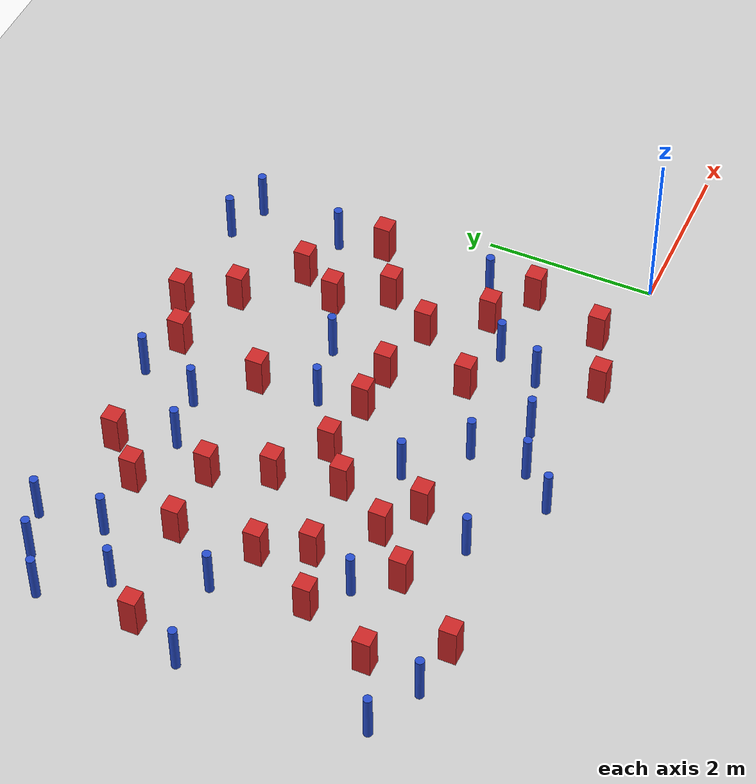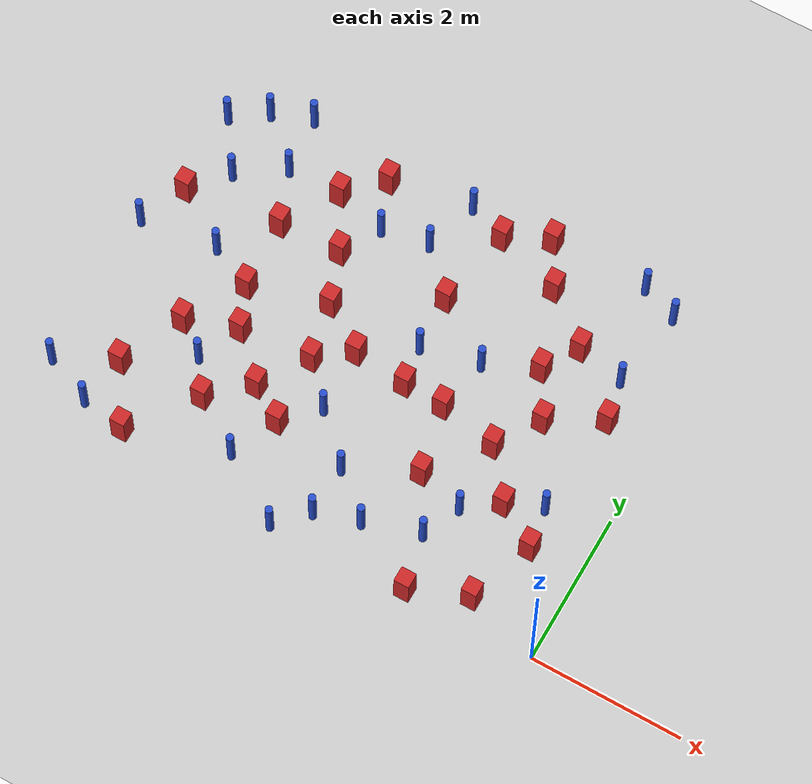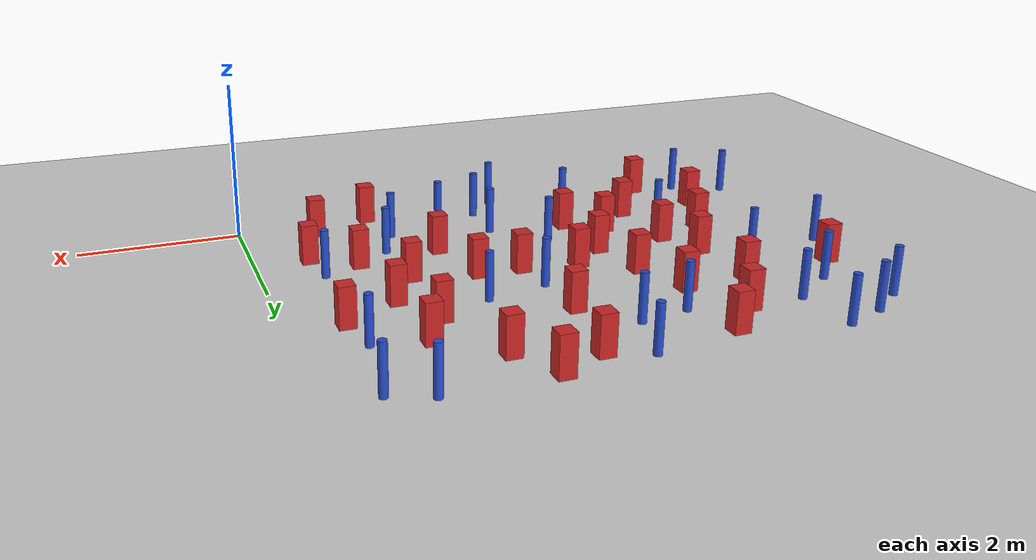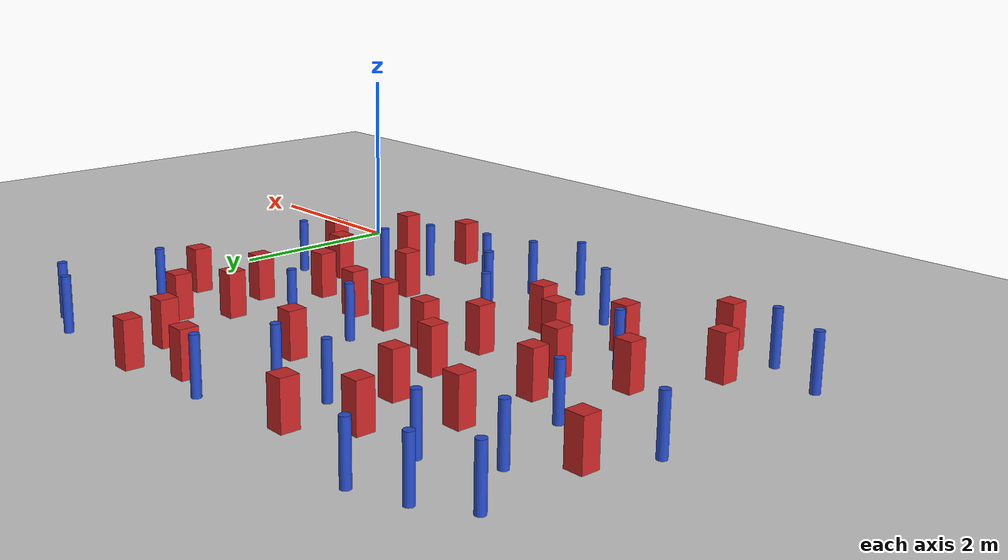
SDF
<sdf version="1.6">
 <world name="default">
  <model name="ground_plane">
   <static>1</static>
   <link name="link">
    <collision name="collision">
     <geometry><plane><normal>0 0 1</normal><size>100 100</size></plane></geometry>
     <surface><friction><ode><mu>100</mu><mu2>50</mu2></ode></friction></surface>
    </collision>
    <visual name="visual">
     <cast_shadows>0</cast_shadows>
     <geometry><plane><normal>0 0 1</normal><size>100 100</size></plane></geometry>
     <material>
      <ambient>1.0 1.0 1.0 1.0</ambient>
      <diffuse>0.8 0.8 0.8 1.0</diffuse>
      <specular>0.01 0.01 0.01 1.000000</specular>
     </material>
    </visual>
   </link>
  </model>
  <model name="square_post_obstacle3">
   <static>true</static>
   <pose>-5.41034767006 3.40983076827 8.22691968438e-08 7.2212513382e-06 -7.54495500217e-07 2.29674213826e-05</pose>
   <link name="link">
    <pose>0 0 0.25 0 -0 0</pose>
    <inertial>
     <mass>100</mass>
     <inertia>
      <ixx>0.166667</ixx>
      <ixy>0</ixy>
      <ixz>0</ixz>
      <iyy>0.166667</iyy>
      <iyz>0</iyz>
      <izz>0.166667</izz>
     </inertia>
    </inertial>
    <collision name="collision"><geometry><box><size>.2 .2 .5</size></box></geometry></collision>
    <visual name="visual">
     <geometry><box><size>.2 .2 .5</size></box></geometry>
     <material>
      <script><name>Gazebo/Red</name><uri>file://media/materials/scripts/gazebo.material</uri></script>
     </material>
    </visual>
   </link>
  </model>
  <model name="pole_obstacle8">
   <static>true</static>
   <pose>-6.29015280869 4.68801422274 2.88873142074e-08 -9.90536690842e-09 4.60219948965e-07 -1.20965994976e-07</pose>
   <link name="link">
    <pose>0 0 0.3 0 -0 0</pose>
    <inertial>
     <mass>1</mass>
     <inertia><ixx>0.145833</ixx><ixy>0</ixy><ixz>0</ixz><iyy>0.145833</iyy><iyz>0</iyz><izz>0.125</izz></inertia>
    </inertial>
    <collision name="collision">
     <geometry><cylinder><radius>0.05</radius><length>.6</length></cylinder></geometry>
    </collision>
    <visual name="visual">
     <geometry><cylinder><radius>0.05</radius><length>.6</length></cylinder></geometry>
     <material>
      <script><name>Gazebo/Blue</name><uri>file://media/materials/scripts/gazebo.material</uri></script>
     </material>
    </visual>
   </link>
  </model>
  <model name="square_post_obstacle8">
   <static>true</static>
   <pose>-2.93860940635 4.60545427997 8.22691968438e-08 7.2212513382e-06 -7.54495500217e-07 2.29674213826e-05</pose>
   <link name="link">
    <pose>0 0 0.25 0 -0 0</pose>
    <inertial>
     <mass>100</mass>
     <inertia>
      <ixx>0.166667</ixx>
      <ixy>0</ixy>
      <ixz>0</ixz>
      <iyy>0.166667</iyy>
      <iyz>0</iyz>
      <izz>0.166667</izz>
     </inertia>
    </inertial>
    <collision name="collision"><geometry><box><size>.2 .2 .5</size></box></geometry></collision>
    <visual name="visual">
     <geometry><box><size>.2 .2 .5</size></box></geometry>
     <material>
      <script><name>Gazebo/Red</name><uri>file://media/materials/scripts/gazebo.material</uri></script>
     </material>
    </visual>
   </link>
  </model>
  <model name="square_post_obstacle12">
   <static>true</static>
   <pose>-1.66555884848 3.28277384429 8.22691968438e-08 7.2212513382e-06 -7.54495500217e-07 2.29674213826e-05</pose>
   <link name="link">
    <pose>0 0 0.25 0 -0 0</pose>
    <inertial>
     <mass>100</mass>
     <inertia>
      <ixx>0.166667</ixx>
      <ixy>0</ixy>
      <ixz>0</ixz>
      <iyy>0.166667</iyy>
      <iyz>0</iyz>
      <izz>0.166667</izz>
     </inertia>
    </inertial>
    <collision name="collision"><geometry><box><size>.2 .2 .5</size></box></geometry></collision>
    <visual name="visual">
     <geometry><box><size>.2 .2 .5</size></box></geometry>
     <material>
      <script><name>Gazebo/Red</name><uri>file://media/materials/scripts/gazebo.material</uri></script>
     </material>
    </visual>
   </link>
  </model>
  <model name="pole_obstacle17">
   <static>true</static>
   <pose>-1.07389106534 4.87921992186 2.88873142074e-08 -9.90536689852e-09 4.60219948989e-07 -1.2096599496e-07</pose>
   <link name="link">
    <pose>0 0 0.3 0 -0 0</pose>
    <inertial>
     <mass>1</mass>
     <inertia><ixx>0.145833</ixx><ixy>0</ixy><ixz>0</ixz><iyy>0.145833</iyy><iyz>0</iyz><izz>0.125</izz></inertia>
    </inertial>
    <collision name="collision">
     <geometry><cylinder><radius>0.05</radius><length>.6</length></cylinder></geometry>
    </collision>
    <visual name="visual">
     <geometry><cylinder><radius>0.05</radius><length>.6</length></cylinder></geometry>
     <material>
      <script><name>Gazebo/Blue</name><uri>file://media/materials/scripts/gazebo.material</uri></script>
     </material>
    </visual>
   </link>
  </model>
  <model name="square_post_obstacle13">
   <static>true</static>
   <pose>-1.32582341424 2.69596367916 8.22691968438e-08 7.2212513382e-06 -7.54495500217e-07 2.29674213826e-05</pose>
   <link name="link">
    <pose>0 0 0.25 0 -0 0</pose>
    <inertial>
     <mass>100</mass>
     <inertia>
      <ixx>0.166667</ixx>
      <ixy>0</ixy>
      <ixz>0</ixz>
      <iyy>0.166667</iyy>
      <iyz>0</iyz>
      <izz>0.166667</izz>
     </inertia>
    </inertial>
    <collision name="collision"><geometry><box><size>.2 .2 .5</size></box></geometry></collision>
    <visual name="visual">
     <geometry><box><size>.2 .2 .5</size></box></geometry>
     <material>
      <script><name>Gazebo/Red</name><uri>file://media/materials/scripts/gazebo.material</uri></script>
     </material>
    </visual>
   </link>
  </model>
  <model name="square_post_obstacle17">
   <static>true</static>
   <pose>-0.67113737275 1.17342062312 8.22691968438e-08 7.2212513382e-06 -7.54495500217e-07 2.29674213826e-05</pose>
   <link name="link">
    <pose>0 0 0.25 0 -0 0</pose>
    <inertial>
     <mass>100</mass>
     <inertia>
      <ixx>0.166667</ixx>
      <ixy>0</ixy>
      <ixz>0</ixz>
      <iyy>0.166667</iyy>
      <iyz>0</iyz>
      <izz>0.166667</izz>
     </inertia>
    </inertial>
    <collision name="collision"><geometry><box><size>.2 .2 .5</size></box></geometry></collision>
    <visual name="visual">
     <geometry><box><size>.2 .2 .5</size></box></geometry>
     <material>
      <script><name>Gazebo/Red</name><uri>file://media/materials/scripts/gazebo.material</uri></script>
     </material>
    </visual>
   </link>
  </model>
  <model name="pole_obstacle25">
   <static>true</static>
   <pose>-6.28411898193 0.190046627765 2.88873142074e-08 -9.90536689378e-09 4.60219949e-07 -1.20965994955e-07</pose>
   <link name="link">
    <pose>0 0 0.3 0 -0 0</pose>
    <inertial>
     <mass>1</mass>
     <inertia><ixx>0.145833</ixx><ixy>0</ixy><ixz>0</ixz><iyy>0.145833</iyy><iyz>0</iyz><izz>0.125</izz></inertia>
    </inertial>
    <collision name="collision">
     <geometry><cylinder><radius>0.05</radius><length>.6</length></cylinder></geometry>
    </collision>
    <visual name="visual">
     <geometry><cylinder><radius>0.05</radius><length>.6</length></cylinder></geometry>
     <material>
      <script><name>Gazebo/Blue</name><uri>file://media/materials/scripts/gazebo.material</uri></script>
     </material>
    </visual>
   </link>
  </model>
  <model name="pole_obstacle27">
   <static>true</static>
   <pose>-2.57740059116 0.464746625475 2.88873142074e-08 -9.90536689151e-09 4.60219949006e-07 -1.20965994951e-07</pose>
   <link name="link">
    <pose>0 0 0.3 0 -0 0</pose>
    <inertial>
     <mass>1</mass>
     <inertia><ixx>0.145833</ixx><ixy>0</ixy><ixz>0</ixz><iyy>0.145833</iyy><iyz>0</iyz><izz>0.125</izz></inertia>
    </inertial>
    <collision name="collision">
     <geometry><cylinder><radius>0.05</radius><length>.6</length></cylinder></geometry>
    </collision>
    <visual name="visual">
     <geometry><cylinder><radius>0.05</radius><length>.6</length></cylinder></geometry>
     <material>
      <script><name>Gazebo/Blue</name><uri>file://media/materials/scripts/gazebo.material</uri></script>
     </material>
    </visual>
   </link>
  </model>
  <model name="pole_obstacle28">
   <static>true</static>
   <pose>-2.33012726247 2.97920122646 2.88873142074e-08 -9.90536690232e-09 4.6021994898e-07 -1.20965994968e-07</pose>
   <link name="link">
    <pose>0 0 0.3 0 -0 0</pose>
    <inertial>
     <mass>1</mass>
     <inertia><ixx>0.145833</ixx><ixy>0</ixy><ixz>0</ixz><iyy>0.145833</iyy><iyz>0</iyz><izz>0.125</izz></inertia>
    </inertial>
    <collision name="collision">
     <geometry><cylinder><radius>0.05</radius><length>.6</length></cylinder></geometry>
    </collision>
    <visual name="visual">
     <geometry><cylinder><radius>0.05</radius><length>.6</length></cylinder></geometry>
     <material>
      <script><name>Gazebo/Blue</name><uri>file://media/materials/scripts/gazebo.material</uri></script>
     </material>
    </visual>
   </link>
  </model>
  <model name="square_post_obstacle19">
   <static>true</static>
   <pose>-0.964790340495 0.286050600379 8.22691968438e-08 7.2212513382e-06 -7.54495500217e-07 2.29674213826e-05</pose>
   <link name="link">
    <pose>0 0 0.25 0 -0 0</pose>
    <inertial>
     <mass>100</mass>
     <inertia>
      <ixx>0.166667</ixx>
      <ixy>0</ixy>
      <ixz>0</ixz>
      <iyy>0.166667</iyy>
      <iyz>0</iyz>
      <izz>0.166667</izz>
     </inertia>
    </inertial>
    <collision name="collision"><geometry><box><size>.2 .2 .5</size></box></geometry></collision>
    <visual name="visual">
     <geometry><box><size>.2 .2 .5</size></box></geometry>
     <material>
      <script><name>Gazebo/Red</name><uri>file://media/materials/scripts/gazebo.material</uri></script>
     </material>
    </visual>
   </link>
  </model>
  <model name="pole_obstacle33">
   <static>true</static>
   <pose>-3.51331519799 -0.095749818379 2.88873142074e-08 -9.90536689633e-09 4.60219948994e-07 -1.20965994959e-07</pose>
   <link name="link">
    <pose>0 0 0.3 0 -0 0</pose>
    <inertial>
     <mass>1</mass>
     <inertia><ixx>0.145833</ixx><ixy>0</ixy><ixz>0</ixz><iyy>0.145833</iyy><iyz>0</iyz><izz>0.125</izz></inertia>
    </inertial>
    <collision name="collision">
     <geometry><cylinder><radius>0.05</radius><length>.6</length></cylinder></geometry>
    </collision>
    <visual name="visual">
     <geometry><cylinder><radius>0.05</radius><length>.6</length></cylinder></geometry>
     <material>
      <script><name>Gazebo/Blue</name><uri>file://media/materials/scripts/gazebo.material</uri></script>
     </material>
    </visual>
   </link>
  </model>
  <model name="pole_obstacle47">
   <static>true</static>
   <pose>-5.92987150498 2.74907113179 2.88873142074e-08 -9.90536690245e-09 4.6021994898e-07 -1.20965994966e-07</pose>
   <link name="link">
    <pose>0 0 0.3 0 -0 0</pose>
    <inertial>
     <mass>1</mass>
     <inertia><ixx>0.145833</ixx><ixy>0</ixy><ixz>0</ixz><iyy>0.145833</iyy><iyz>0</iyz><izz>0.125</izz></inertia>
    </inertial>
    <collision name="collision">
     <geometry><cylinder><radius>0.05</radius><length>.6</length></cylinder></geometry>
    </collision>
    <visual name="visual">
     <geometry><cylinder><radius>0.05</radius><length>.6</length></cylinder></geometry>
     <material>
      <script><name>Gazebo/Blue</name><uri>file://media/materials/scripts/gazebo.material</uri></script>
     </material>
    </visual>
   </link>
  </model>
  <model name="pole_obstacle53">
   <static>true</static>
   <pose>-0.753272186393 3.62875989723 2.88873142074e-08 -9.90536689636e-09 4.60219948994e-07 -1.20965994958e-07</pose>
   <link name="link">
    <pose>0 0 0.3 0 -0 0</pose>
    <inertial>
     <mass>1</mass>
     <inertia><ixx>0.145833</ixx><ixy>0</ixy><ixz>0</ixz><iyy>0.145833</iyy><iyz>0</iyz><izz>0.125</izz></inertia>
    </inertial>
    <collision name="collision">
     <geometry><cylinder><radius>0.05</radius><length>.6</length></cylinder></geometry>
    </collision>
    <visual name="visual">
     <geometry><cylinder><radius>0.05</radius><length>.6</length></cylinder></geometry>
     <material>
      <script><name>Gazebo/Blue</name><uri>file://media/materials/scripts/gazebo.material</uri></script>
     </material>
    </visual>
   </link>
  </model>
  <model name="square_post_obstacle41">
   <static>true</static>
   <pose>-4.53339916982 4.59518225345 8.22691968438e-08 7.22125133819e-06 -7.54495500217e-07 2.29674213826e-05</pose>
   <link name="link">
    <pose>0 0 0.25 0 -0 0</pose>
    <inertial>
     <mass>100</mass>
     <inertia>
      <ixx>0.166667</ixx>
      <ixy>0</ixy>
      <ixz>0</ixz>
      <iyy>0.166667</iyy>
      <iyz>0</iyz>
      <izz>0.166667</izz>
     </inertia>
    </inertial>
    <collision name="collision"><geometry><box><size>.2 .2 .5</size></box></geometry></collision>
    <visual name="visual">
     <geometry><box><size>.2 .2 .5</size></box></geometry>
     <material>
      <script><name>Gazebo/Red</name><uri>file://media/materials/scripts/gazebo.material</uri></script>
     </material>
    </visual>
   </link>
  </model>
  <model name="square_post_obstacle44">
   <static>true</static>
   <pose>-4.57899490688 3.44497203389 8.22691968438e-08 7.2212513382e-06 -7.54495500217e-07 2.29674213826e-05</pose>
   <link name="link">
    <pose>0 0 0.25 0 -0 0</pose>
    <inertial>
     <mass>100</mass>
     <inertia>
      <ixx>0.166667</ixx>
      <ixy>0</ixy>
      <ixz>0</ixz>
      <iyy>0.166667</iyy>
      <iyz>0</iyz>
      <izz>0.166667</izz>
     </inertia>
    </inertial>
    <collision name="collision"><geometry><box><size>.2 .2 .5</size></box></geometry></collision>
    <visual name="visual">
     <geometry><box><size>.2 .2 .5</size></box></geometry>
     <material>
      <script><name>Gazebo/Red</name><uri>file://media/materials/scripts/gazebo.material</uri></script>
     </material>
    </visual>
   </link>
  </model>
  <model name="square_post_obstacle49">
   <static>true</static>
   <pose>-6.16802656901 0.849499675967 8.22691968438e-08 7.2212513382e-06 -7.54495500217e-07 2.29674213826e-05</pose>
   <link name="link">
    <pose>0 0 0.25 0 -0 0</pose>
    <inertial>
     <mass>100</mass>
     <inertia>
      <ixx>0.166667</ixx>
      <ixy>0</ixy>
      <ixz>0</ixz>
      <iyy>0.166667</iyy>
      <iyz>0</iyz>
      <izz>0.166667</izz>
     </inertia>
    </inertial>
    <collision name="collision"><geometry><box><size>.2 .2 .5</size></box></geometry></collision>
    <visual name="visual">
     <geometry><box><size>.2 .2 .5</size></box></geometry>
     <material>
      <script><name>Gazebo/Red</name><uri>file://media/materials/scripts/gazebo.material</uri></script>
     </material>
    </visual>
   </link>
  </model>
  <model name="square_post_obstacle56">
   <static>true</static>
   <pose>-2.26331277555 1.37835318998 8.22691968438e-08 7.2212513382e-06 -7.54495500217e-07 2.29674213826e-05</pose>
   <link name="link">
    <pose>0 0 0.25 0 -0 0</pose>
    <inertial>
     <mass>100</mass>
     <inertia>
      <ixx>0.166667</ixx>
      <ixy>0</ixy>
      <ixz>0</ixz>
      <iyy>0.166667</iyy>
      <iyz>0</iyz>
      <izz>0.166667</izz>
     </inertia>
    </inertial>
    <collision name="collision"><geometry><box><size>.2 .2 .5</size></box></geometry></collision>
    <visual name="visual">
     <geometry><box><size>.2 .2 .5</size></box></geometry>
     <material>
      <script><name>Gazebo/Red</name><uri>file://media/materials/scripts/gazebo.material</uri></script>
     </material>
    </visual>
   </link>
  </model>
  <model name="pole_obstacle69">
   <static>true</static>
   <pose>-5.69435839213 4.12223642992 2.88873142074e-08 -9.90536690842e-09 4.60219948965e-07 -1.20965994976e-07</pose>
   <link name="link">
    <pose>0 0 0.3 0 -0 0</pose>
    <inertial>
     <mass>1</mass>
     <inertia><ixx>0.145833</ixx><ixy>0</ixy><ixz>0</ixz><iyy>0.145833</iyy><iyz>0</iyz><izz>0.125</izz></inertia>
    </inertial>
    <collision name="collision">
     <geometry><cylinder><radius>0.05</radius><length>.6</length></cylinder></geometry>
    </collision>
    <visual name="visual">
     <geometry><cylinder><radius>0.05</radius><length>.6</length></cylinder></geometry>
     <material>
      <script><name>Gazebo/Blue</name><uri>file://media/materials/scripts/gazebo.material</uri></script>
     </material>
    </visual>
   </link>
  </model>
  <model name="square_post_obstacle63">
   <static>true</static>
   <pose>-0.645468593069 3.08179479339 8.22691968438e-08 7.2212513382e-06 -7.54495500217e-07 2.29674213826e-05</pose>
   <link name="link">
    <pose>0 0 0.25 0 -0 0</pose>
    <inertial>
     <mass>100</mass>
     <inertia>
      <ixx>0.166667</ixx>
      <ixy>0</ixy>
      <ixz>0</ixz>
      <iyy>0.166667</iyy>
      <iyz>0</iyz>
      <izz>0.166667</izz>
     </inertia>
    </inertial>
    <collision name="collision"><geometry><box><size>.2 .2 .5</size></box></geometry></collision>
    <visual name="visual">
     <geometry><box><size>.2 .2 .5</size></box></geometry>
     <material>
      <script><name>Gazebo/Red</name><uri>file://media/materials/scripts/gazebo.material</uri></script>
     </material>
    </visual>
   </link>
  </model>
  <model name="pole_obstacle78">
   <static>true</static>
   <pose>-3.66704878114 4.07977726612 2.88873142074e-08 -9.90536692062e-09 4.60219948937e-07 -1.20965994985e-07</pose>
   <link name="link">
    <pose>0 0 0.3 0 -0 0</pose>
    <inertial>
     <mass>1</mass>
     <inertia><ixx>0.145833</ixx><ixy>0</ixy><ixz>0</ixz><iyy>0.145833</iyy><iyz>0</iyz><izz>0.125</izz></inertia>
    </inertial>
    <collision name="collision">
     <geometry><cylinder><radius>0.05</radius><length>.6</length></cylinder></geometry>
    </collision>
    <visual name="visual">
     <geometry><cylinder><radius>0.05</radius><length>.6</length></cylinder></geometry>
     <material>
      <script><name>Gazebo/Blue</name><uri>file://media/materials/scripts/gazebo.material</uri></script>
     </material>
    </visual>
   </link>
  </model>
  <model name="pole_obstacle82">
   <static>true</static>
   <pose>-3.13059219794 0.948747031617 2.88873142074e-08 -9.90536689285e-09 4.60219949002e-07 -1.20965994953e-07</pose>
   <link name="link">
    <pose>0 0 0.3 0 -0 0</pose>
    <inertial>
     <mass>1</mass>
     <inertia><ixx>0.145833</ixx><ixy>0</ixy><ixz>0</ixz><iyy>0.145833</iyy><iyz>0</iyz><izz>0.125</izz></inertia>
    </inertial>
    <collision name="collision">
     <geometry><cylinder><radius>0.05</radius><length>.6</length></cylinder></geometry>
    </collision>
    <visual name="visual">
     <geometry><cylinder><radius>0.05</radius><length>.6</length></cylinder></geometry>
     <material>
      <script><name>Gazebo/Blue</name><uri>file://media/materials/scripts/gazebo.material</uri></script>
     </material>
    </visual>
   </link>
  </model>
  <model name="square_post_obstacle81">
   <static>true</static>
   <pose>-4.32471397852 2.77546284357 8.22691968438e-08 7.2212513382e-06 -7.54495500217e-07 2.29674213826e-05</pose>
   <link name="link">
    <pose>0 0 0.25 0 -0 0</pose>
    <inertial>
     <mass>100</mass>
     <inertia>
      <ixx>0.166667</ixx>
      <ixy>0</ixy>
      <ixz>0</ixz>
      <iyy>0.166667</iyy>
      <iyz>0</iyz>
      <izz>0.166667</izz>
     </inertia>
    </inertial>
    <collision name="collision"><geometry><box><size>.2 .2 .5</size></box></geometry></collision>
    <visual name="visual">
     <geometry><box><size>.2 .2 .5</size></box></geometry>
     <material>
      <script><name>Gazebo/Red</name><uri>file://media/materials/scripts/gazebo.material</uri></script>
     </material>
    </visual>
   </link>
  </model>
  <model name="square_post_obstacle83">
   <static>true</static>
   <pose>-4.16226019898 2.02490785461 8.22691968438e-08 7.2212513382e-06 -7.54495500217e-07 2.29674213826e-05</pose>
   <link name="link">
    <pose>0 0 0.25 0 -0 0</pose>
    <inertial>
     <mass>100</mass>
     <inertia>
      <ixx>0.166667</ixx>
      <ixy>0</ixy>
      <ixz>0</ixz>
      <iyy>0.166667</iyy>
      <iyz>0</iyz>
      <izz>0.166667</izz>
     </inertia>
    </inertial>
    <collision name="collision"><geometry><box><size>.2 .2 .5</size></box></geometry></collision>
    <visual name="visual">
     <geometry><box><size>.2 .2 .5</size></box></geometry>
     <material>
      <script><name>Gazebo/Red</name><uri>file://media/materials/scripts/gazebo.material</uri></script>
     </material>
    </visual>
   </link>
  </model>
  <model name="pole_obstacle93">
   <static>true</static>
   <pose>-4.385149861 0.474955158862 2.88873142074e-08 -9.90536689483e-09 4.60219948998e-07 -1.20965994956e-07</pose>
   <link name="link">
    <pose>0 0 0.3 0 -0 0</pose>
    <inertial>
     <mass>1</mass>
     <inertia><ixx>0.145833</ixx><ixy>0</ixy><ixz>0</ixz><iyy>0.145833</iyy><iyz>0</iyz><izz>0.125</izz></inertia>
    </inertial>
    <collision name="collision">
     <geometry><cylinder><radius>0.05</radius><length>.6</length></cylinder></geometry>
    </collision>
    <visual name="visual">
     <geometry><cylinder><radius>0.05</radius><length>.6</length></cylinder></geometry>
     <material>
      <script><name>Gazebo/Blue</name><uri>file://media/materials/scripts/gazebo.material</uri></script>
     </material>
    </visual>
   </link>
  </model>
  <model name="square_post_obstacle86">
   <static>true</static>
   <pose>-5.3454951539 2.47973736498 8.22691968438e-08 7.2212513382e-06 -7.54495500217e-07 2.29674213826e-05</pose>
   <link name="link">
    <pose>0 0 0.25 0 -0 0</pose>
    <inertial>
     <mass>100</mass>
     <inertia>
      <ixx>0.166667</ixx>
      <ixy>0</ixy>
      <ixz>0</ixz>
      <iyy>0.166667</iyy>
      <iyz>0</iyz>
      <izz>0.166667</izz>
     </inertia>
    </inertial>
    <collision name="collision"><geometry><box><size>.2 .2 .5</size></box></geometry></collision>
    <visual name="visual">
     <geometry><box><size>.2 .2 .5</size></box></geometry>
     <material>
      <script><name>Gazebo/Red</name><uri>file://media/materials/scripts/gazebo.material</uri></script>
     </material>
    </visual>
   </link>
  </model>
  <model name="pole_obstacle99">
   <static>true</static>
   <pose>-3.45203311318 4.79588887908 2.88873142074e-08 -9.90536692062e-09 4.60219948937e-07 -1.20965994985e-07</pose>
   <link name="link">
    <pose>0 0 0.3 0 -0 0</pose>
    <inertial>
     <mass>1</mass>
     <inertia><ixx>0.145833</ixx><ixy>0</ixy><ixz>0</ixz><iyy>0.145833</iyy><iyz>0</iyz><izz>0.125</izz></inertia>
    </inertial>
    <collision name="collision">
     <geometry><cylinder><radius>0.05</radius><length>.6</length></cylinder></geometry>
    </collision>
    <visual name="visual">
     <geometry><cylinder><radius>0.05</radius><length>.6</length></cylinder></geometry>
     <material>
      <script><name>Gazebo/Blue</name><uri>file://media/materials/scripts/gazebo.material</uri></script>
     </material>
    </visual>
   </link>
  </model>
  <model name="square_post_obstacle95">
   <static>true</static>
   <pose>-5.69072771992 0.0996127824381 8.22691968438e-08 7.2212513382e-06 -7.54495500217e-07 2.29674213826e-05</pose>
   <link name="link">
    <pose>0 0 0.25 0 -0 0</pose>
    <inertial>
     <mass>100</mass>
     <inertia>
      <ixx>0.166667</ixx>
      <ixy>0</ixy>
      <ixz>0</ixz>
      <iyy>0.166667</iyy>
      <iyz>0</iyz>
      <izz>0.166667</izz>
     </inertia>
    </inertial>
    <collision name="collision"><geometry><box><size>.2 .2 .5</size></box></geometry></collision>
    <visual name="visual">
     <geometry><box><size>.2 .2 .5</size></box></geometry>
     <material>
      <script><name>Gazebo/Red</name><uri>file://media/materials/scripts/gazebo.material</uri></script>
     </material>
    </visual>
   </link>
  </model>
  <model name="square_post_obstacle96">
   <static>true</static>
   <pose>-1.6894994267 2.11117003275 8.22691968438e-08 7.2212513382e-06 -7.54495500217e-07 2.29674213826e-05</pose>
   <link name="link">
    <pose>0 0 0.25 0 -0 0</pose>
    <inertial>
     <mass>100</mass>
     <inertia>
      <ixx>0.166667</ixx>
      <ixy>0</ixy>
      <ixz>0</ixz>
      <iyy>0.166667</iyy>
      <iyz>0</iyz>
      <izz>0.166667</izz>
     </inertia>
    </inertial>
    <collision name="collision"><geometry><box><size>.2 .2 .5</size></box></geometry></collision>
    <visual name="visual">
     <geometry><box><size>.2 .2 .5</size></box></geometry>
     <material>
      <script><name>Gazebo/Red</name><uri>file://media/materials/scripts/gazebo.material</uri></script>
     </material>
    </visual>
   </link>
  </model>
  <model name="square_post_obstacle103">
   <static>true</static>
   <pose>-1.21625938325 1.51157805497 8.22691968438e-08 7.2212513382e-06 -7.54495500217e-07 2.29674213826e-05</pose>
   <link name="link">
    <pose>0 0 0.25 0 -0 0</pose>
    <inertial>
     <mass>100</mass>
     <inertia>
      <ixx>0.166667</ixx>
      <ixy>0</ixy>
      <ixz>0</ixz>
      <iyy>0.166667</iyy>
      <iyz>0</iyz>
      <izz>0.166667</izz>
     </inertia>
    </inertial>
    <collision name="collision"><geometry><box><size>.2 .2 .5</size></box></geometry></collision>
    <visual name="visual">
     <geometry><box><size>.2 .2 .5</size></box></geometry>
     <material>
      <script><name>Gazebo/Red</name><uri>file://media/materials/scripts/gazebo.material</uri></script>
     </material>
    </visual>
   </link>
  </model>
  <model name="square_post_obstacle107">
   <static>true</static>
   <pose>-2.04757939076 4.30649116073 8.22691968438e-08 7.22125133819e-06 -7.54495500217e-07 2.29674213826e-05</pose>
   <link name="link">
    <pose>0 0 0.25 0 -0 0</pose>
    <inertial>
     <mass>100</mass>
     <inertia>
      <ixx>0.166667</ixx>
      <ixy>0</ixy>
      <ixz>0</ixz>
      <iyy>0.166667</iyy>
      <iyz>0</iyz>
      <izz>0.166667</izz>
     </inertia>
    </inertial>
    <collision name="collision"><geometry><box><size>.2 .2 .5</size></box></geometry></collision>
    <visual name="visual">
     <geometry><box><size>.2 .2 .5</size></box></geometry>
     <material>
      <script><name>Gazebo/Red</name><uri>file://media/materials/scripts/gazebo.material</uri></script>
     </material>
    </visual>
   </link>
  </model>
  <model name="square_post_obstacle109">
   <static>true</static>
   <pose>-4.56706109933 1.3876063591 8.22691968438e-08 7.2212513382e-06 -7.54495500217e-07 2.29674213826e-05</pose>
   <link name="link">
    <pose>0 0 0.25 0 -0 0</pose>
    <inertial>
     <mass>100</mass>
     <inertia>
      <ixx>0.166667</ixx>
      <ixy>0</ixy>
      <ixz>0</ixz>
      <iyy>0.166667</iyy>
      <iyz>0</iyz>
      <izz>0.166667</izz>
     </inertia>
    </inertial>
    <collision name="collision"><geometry><box><size>.2 .2 .5</size></box></geometry></collision>
    <visual name="visual">
     <geometry><box><size>.2 .2 .5</size></box></geometry>
     <material>
      <script><name>Gazebo/Red</name><uri>file://media/materials/scripts/gazebo.material</uri></script>
     </material>
    </visual>
   </link>
  </model>
  <model name="square_post_obstacle112">
   <static>true</static>
   <pose>-5.11368219756 1.93700551667 8.22691968438e-08 7.2212513382e-06 -7.54495500217e-07 2.29674213826e-05</pose>
   <link name="link">
    <pose>0 0 0.25 0 -0 0</pose>
    <inertial>
     <mass>100</mass>
     <inertia>
      <ixx>0.166667</ixx>
      <ixy>0</ixy>
      <ixz>0</ixz>
      <iyy>0.166667</iyy>
      <iyz>0</iyz>
      <izz>0.166667</izz>
     </inertia>
    </inertial>
    <collision name="collision"><geometry><box><size>.2 .2 .5</size></box></geometry></collision>
    <visual name="visual">
     <geometry><box><size>.2 .2 .5</size></box></geometry>
     <material>
      <script><name>Gazebo/Red</name><uri>file://media/materials/scripts/gazebo.material</uri></script>
     </material>
    </visual>
   </link>
  </model>
  <model name="square_post_obstacle115">
   <static>true</static>
   <pose>-5.78587589671 1.69714121579 8.22691968438e-08 7.2212513382e-06 -7.54495500217e-07 2.29674213826e-05</pose>
   <link name="link">
    <pose>0 0 0.25 0 -0 0</pose>
    <inertial>
     <mass>100</mass>
     <inertia>
      <ixx>0.166667</ixx>
      <ixy>0</ixy>
      <ixz>0</ixz>
      <iyy>0.166667</iyy>
      <iyz>0</iyz>
      <izz>0.166667</izz>
     </inertia>
    </inertial>
    <collision name="collision"><geometry><box><size>.2 .2 .5</size></box></geometry></collision>
    <visual name="visual">
     <geometry><box><size>.2 .2 .5</size></box></geometry>
     <material>
      <script><name>Gazebo/Red</name><uri>file://media/materials/scripts/gazebo.material</uri></script>
     </material>
    </visual>
   </link>
  </model>
  <model name="pole_obstacle130">
   <static>true</static>
   <pose>-5.37182333535 1.3709548505 2.88873142074e-08 -9.90536689445e-09 4.60219948999e-07 -1.20965994956e-07</pose>
   <link name="link">
    <pose>0 0 0.3 0 -0 0</pose>
    <inertial>
     <mass>1</mass>
     <inertia><ixx>0.145833</ixx><ixy>0</ixy><ixz>0</ixz><iyy>0.145833</iyy><iyz>0</iyz><izz>0.125</izz></inertia>
    </inertial>
    <collision name="collision">
     <geometry><cylinder><radius>0.05</radius><length>.6</length></cylinder></geometry>
    </collision>
    <visual name="visual">
     <geometry><cylinder><radius>0.05</radius><length>.6</length></cylinder></geometry>
     <material>
      <script><name>Gazebo/Blue</name><uri>file://media/materials/scripts/gazebo.material</uri></script>
     </material>
    </visual>
   </link>
  </model>
  <model name="pole_obstacle131">
   <static>true</static>
   <pose>-6.28189247292 3.72381848374 2.88873142074e-08 -9.90536690245e-09 4.6021994898e-07 -1.20965994966e-07</pose>
   <link name="link">
    <pose>0 0 0.3 0 -0 0</pose>
    <inertial>
     <mass>1</mass>
     <inertia><ixx>0.145833</ixx><ixy>0</ixy><ixz>0</ixz><iyy>0.145833</iyy><iyz>0</iyz><izz>0.125</izz></inertia>
    </inertial>
    <collision name="collision">
     <geometry><cylinder><radius>0.05</radius><length>.6</length></cylinder></geometry>
    </collision>
    <visual name="visual">
     <geometry><cylinder><radius>0.05</radius><length>.6</length></cylinder></geometry>
     <material>
      <script><name>Gazebo/Blue</name><uri>file://media/materials/scripts/gazebo.material</uri></script>
     </material>
    </visual>
   </link>
  </model>
  <model name="square_post_obstacle126">
   <static>true</static>
   <pose>-3.01189458589 2.29294550875 8.22691968438e-08 7.2212513382e-06 -7.54495500217e-07 2.29674213826e-05</pose>
   <link name="link">
    <pose>0 0 0.25 0 -0 0</pose>
    <inertial>
     <mass>100</mass>
     <inertia>
      <ixx>0.166667</ixx>
      <ixy>0</ixy>
      <ixz>0</ixz>
      <iyy>0.166667</iyy>
      <iyz>0</iyz>
      <izz>0.166667</izz>
     </inertia>
    </inertial>
    <collision name="collision"><geometry><box><size>.2 .2 .5</size></box></geometry></collision>
    <visual name="visual">
     <geometry><box><size>.2 .2 .5</size></box></geometry>
     <material>
      <script><name>Gazebo/Red</name><uri>file://media/materials/scripts/gazebo.material</uri></script>
     </material>
    </visual>
   </link>
  </model>
  <model name="square_post_obstacle128">
   <static>true</static>
   <pose>-3.13186796007 3.53205493878 8.22691968438e-08 7.2212513382e-06 -7.54495500217e-07 2.29674213826e-05</pose>
   <link name="link">
    <pose>0 0 0.25 0 -0 0</pose>
    <inertial>
     <mass>100</mass>
     <inertia>
      <ixx>0.166667</ixx>
      <ixy>0</ixy>
      <ixz>0</ixz>
      <iyy>0.166667</iyy>
      <iyz>0</iyz>
      <izz>0.166667</izz>
     </inertia>
    </inertial>
    <collision name="collision"><geometry><box><size>.2 .2 .5</size></box></geometry></collision>
    <visual name="visual">
     <geometry><box><size>.2 .2 .5</size></box></geometry>
     <material>
      <script><name>Gazebo/Red</name><uri>file://media/materials/scripts/gazebo.material</uri></script>
     </material>
    </visual>
   </link>
  </model>
  <model name="square_post_obstacle133">
   <static>true</static>
   <pose>-1.70638416671 -0.0109827853097 8.22691968438e-08 7.2212513382e-06 -7.54495500217e-07 2.29674213826e-05</pose>
   <link name="link">
    <pose>0 0 0.25 0 -0 0</pose>
    <inertial>
     <mass>100</mass>
     <inertia>
      <ixx>0.166667</ixx>
      <ixy>0</ixy>
      <ixz>0</ixz>
      <iyy>0.166667</iyy>
      <iyz>0</iyz>
      <izz>0.166667</izz>
     </inertia>
    </inertial>
    <collision name="collision"><geometry><box><size>.2 .2 .5</size></box></geometry></collision>
    <visual name="visual">
     <geometry><box><size>.2 .2 .5</size></box></geometry>
     <material>
      <script><name>Gazebo/Red</name><uri>file://media/materials/scripts/gazebo.material</uri></script>
     </material>
    </visual>
   </link>
  </model>
  <model name="pole_obstacle137">
   <static>true</static>
   <pose>-6.91926221979 0.477710554593 2.88873142074e-08 -9.90536689483e-09 4.60219948998e-07 -1.20965994956e-07</pose>
   <link name="link">
    <pose>0 0 0.3 0 -0 0</pose>
    <inertial>
     <mass>1</mass>
     <inertia><ixx>0.145833</ixx><ixy>0</ixy><ixz>0</ixz><iyy>0.145833</iyy><iyz>0</iyz><izz>0.125</izz></inertia>
    </inertial>
    <collision name="collision">
     <geometry><cylinder><radius>0.05</radius><length>.6</length></cylinder></geometry>
    </collision>
    <visual name="visual">
     <geometry><cylinder><radius>0.05</radius><length>.6</length></cylinder></geometry>
     <material>
      <script><name>Gazebo/Blue</name><uri>file://media/materials/scripts/gazebo.material</uri></script>
     </material>
    </visual>
   </link>
  </model>
  <model name="pole_obstacle148">
   <static>true</static>
   <pose>-0.750473961101 1.71163101594 2.88873142074e-08 -9.90536689855e-09 4.60219948989e-07 -1.20965994962e-07</pose>
   <link name="link">
    <pose>0 0 0.3 0 -0 0</pose>
    <inertial>
     <mass>1</mass>
     <inertia><ixx>0.145833</ixx><ixy>0</ixy><ixz>0</ixz><iyy>0.145833</iyy><iyz>0</iyz><izz>0.125</izz></inertia>
    </inertial>
    <collision name="collision">
     <geometry><cylinder><radius>0.05</radius><length>.6</length></cylinder></geometry>
    </collision>
    <visual name="visual">
     <geometry><cylinder><radius>0.05</radius><length>.6</length></cylinder></geometry>
     <material>
      <script><name>Gazebo/Blue</name><uri>file://media/materials/scripts/gazebo.material</uri></script>
     </material>
    </visual>
   </link>
  </model>
  <model name="square_post_obstacle143">
   <static>true</static>
   <pose>-2.46490116124 2.26550404571 8.22691968438e-08 7.2212513382e-06 -7.54495500217e-07 2.29674213826e-05</pose>
   <link name="link">
    <pose>0 0 0.25 0 -0 0</pose>
    <inertial>
     <mass>100</mass>
     <inertia>
      <ixx>0.166667</ixx>
      <ixy>0</ixy>
      <ixz>0</ixz>
      <iyy>0.166667</iyy>
      <iyz>0</iyz>
      <izz>0.166667</izz>
     </inertia>
    </inertial>
    <collision name="collision"><geometry><box><size>.2 .2 .5</size></box></geometry></collision>
    <visual name="visual">
     <geometry><box><size>.2 .2 .5</size></box></geometry>
     <material>
      <script><name>Gazebo/Red</name><uri>file://media/materials/scripts/gazebo.material</uri></script>
     </material>
    </visual>
   </link>
  </model>
  <model name="square_post_obstacle149">
   <static>true</static>
   <pose>-4.10977905424 1.10133018394 8.22691968438e-08 7.2212513382e-06 -7.54495500217e-07 2.29674213826e-05</pose>
   <link name="link">
    <pose>0 0 0.25 0 -0 0</pose>
    <inertial>
     <mass>100</mass>
     <inertia>
      <ixx>0.166667</ixx>
      <ixy>0</ixy>
      <ixz>0</ixz>
      <iyy>0.166667</iyy>
      <iyz>0</iyz>
      <izz>0.166667</izz>
     </inertia>
    </inertial>
    <collision name="collision"><geometry><box><size>.2 .2 .5</size></box></geometry></collision>
    <visual name="visual">
     <geometry><box><size>.2 .2 .5</size></box></geometry>
     <material>
      <script><name>Gazebo/Red</name><uri>file://media/materials/scripts/gazebo.material</uri></script>
     </material>
    </visual>
   </link>
  </model>
  <model name="square_post_obstacle151">
   <static>true</static>
   <pose>-1.383888329 3.76039329234 8.22691968438e-08 7.2212513382e-06 -7.54495500217e-07 2.29674213826e-05</pose>
   <link name="link">
    <pose>0 0 0.25 0 -0 0</pose>
    <inertial>
     <mass>100</mass>
     <inertia>
      <ixx>0.166667</ixx>
      <ixy>0</ixy>
      <ixz>0</ixz>
      <iyy>0.166667</iyy>
      <iyz>0</iyz>
      <izz>0.166667</izz>
     </inertia>
    </inertial>
    <collision name="collision"><geometry><box><size>.2 .2 .5</size></box></geometry></collision>
    <visual name="visual">
     <geometry><box><size>.2 .2 .5</size></box></geometry>
     <material>
      <script><name>Gazebo/Red</name><uri>file://media/materials/scripts/gazebo.material</uri></script>
     </material>
    </visual>
   </link>
  </model>
  <model name="pole_obstacle159">
   <static>true</static>
   <pose>-1.8584392486 0.693492782955 2.88873142074e-08 -9.90536689692e-09 4.60219948993e-07 -1.20965994958e-07</pose>
   <link name="link">
    <pose>0 0 0.3 0 -0 0</pose>
    <inertial>
     <mass>1</mass>
     <inertia><ixx>0.145833</ixx><ixy>0</ixy><ixz>0</ixz><iyy>0.145833</iyy><iyz>0</iyz><izz>0.125</izz></inertia>
    </inertial>
    <collision name="collision">
     <geometry><cylinder><radius>0.05</radius><length>.6</length></cylinder></geometry>
    </collision>
    <visual name="visual">
     <geometry><cylinder><radius>0.05</radius><length>.6</length></cylinder></geometry>
     <material>
      <script><name>Gazebo/Blue</name><uri>file://media/materials/scripts/gazebo.material</uri></script>
     </material>
    </visual>
   </link>
  </model>
  <model name="square_post_obstacle158">
   <static>true</static>
   <pose>-3.73262655585 2.36815768716 8.22691968438e-08 7.2212513382e-06 -7.54495500217e-07 2.29674213826e-05</pose>
   <link name="link">
    <pose>0 0 0.25 0 -0 0</pose>
    <inertial>
     <mass>100</mass>
     <inertia>
      <ixx>0.166667</ixx>
      <ixy>0</ixy>
      <ixz>0</ixz>
      <iyy>0.166667</iyy>
      <iyz>0</iyz>
      <izz>0.166667</izz>
     </inertia>
    </inertial>
    <collision name="collision"><geometry><box><size>.2 .2 .5</size></box></geometry></collision>
    <visual name="visual">
     <geometry><box><size>.2 .2 .5</size></box></geometry>
     <material>
      <script><name>Gazebo/Red</name><uri>file://media/materials/scripts/gazebo.material</uri></script>
     </material>
    </visual>
   </link>
  </model>
  <model name="pole_obstacle176">
   <static>true</static>
   <pose>-6.95000038496 2.62397851379 2.88873142074e-08 -9.90536690245e-09 4.6021994898e-07 -1.20965994966e-07</pose>
   <link name="link">
    <pose>0 0 0.3 0 -0 0</pose>
    <inertial>
     <mass>1</mass>
     <inertia><ixx>0.145833</ixx><ixy>0</ixy><ixz>0</ixz><iyy>0.145833</iyy><iyz>0</iyz><izz>0.125</izz></inertia>
    </inertial>
    <collision name="collision">
     <geometry><cylinder><radius>0.05</radius><length>.6</length></cylinder></geometry>
    </collision>
    <visual name="visual">
     <geometry><cylinder><radius>0.05</radius><length>.6</length></cylinder></geometry>
     <material>
      <script><name>Gazebo/Blue</name><uri>file://media/materials/scripts/gazebo.material</uri></script>
     </material>
    </visual>
   </link>
  </model>
  <model name="square_post_obstacle186">
   <static>true</static>
   <pose>-2.36679302361 4.87777065601 8.22691968438e-08 7.2212513382e-06 -7.54495500217e-07 2.29674213826e-05</pose>
   <link name="link">
    <pose>0 0 0.25 0 -0 0</pose>
    <inertial>
     <mass>100</mass>
     <inertia>
      <ixx>0.166667</ixx>
      <ixy>0</ixy>
      <ixz>0</ixz>
      <iyy>0.166667</iyy>
      <iyz>0</iyz>
      <izz>0.166667</izz>
     </inertia>
    </inertial>
    <collision name="collision"><geometry><box><size>.2 .2 .5</size></box></geometry></collision>
    <visual name="visual">
     <geometry><box><size>.2 .2 .5</size></box></geometry>
     <material>
      <script><name>Gazebo/Red</name><uri>file://media/materials/scripts/gazebo.material</uri></script>
     </material>
    </visual>
   </link>
  </model>
  <model name="square_post_obstacle189">
   <static>true</static>
   <pose>-5.0634401646 0.935210400474 8.22691968438e-08 7.2212513382e-06 -7.54495500217e-07 2.29674213826e-05</pose>
   <link name="link">
    <pose>0 0 0.25 0 -0 0</pose>
    <inertial>
     <mass>100</mass>
     <inertia>
      <ixx>0.166667</ixx>
      <ixy>0</ixy>
      <ixz>0</ixz>
      <iyy>0.166667</iyy>
      <iyz>0</iyz>
      <izz>0.166667</izz>
     </inertia>
    </inertial>
    <collision name="collision"><geometry><box><size>.2 .2 .5</size></box></geometry></collision>
    <visual name="visual">
     <geometry><box><size>.2 .2 .5</size></box></geometry>
     <material>
      <script><name>Gazebo/Red</name><uri>file://media/materials/scripts/gazebo.material</uri></script>
     </material>
    </visual>
   </link>
  </model>
  <model name="square_post_obstacle209">
   <static>true</static>
   <pose>-6.67079531522 3.25652761068 8.22691968438e-08 7.2212513382e-06 -7.54495500217e-07 2.29674213826e-05</pose>
   <link name="link">
    <pose>0 0 0.25 0 -0 0</pose>
    <inertial>
     <mass>100</mass>
     <inertia>
      <ixx>0.166667</ixx>
      <ixy>0</ixy>
      <ixz>0</ixz>
      <iyy>0.166667</iyy>
      <iyz>0</iyz>
      <izz>0.166667</izz>
     </inertia>
    </inertial>
    <collision name="collision"><geometry><box><size>.2 .2 .5</size></box></geometry></collision>
    <visual name="visual">
     <geometry><box><size>.2 .2 .5</size></box></geometry>
     <material>
      <script><name>Gazebo/Red</name><uri>file://media/materials/scripts/gazebo.material</uri></script>
     </material>
    </visual>
   </link>
  </model>
  <model name="square_post_obstacle214">
   <static>true</static>
   <pose>-4.97285568186 4.14339496284 8.22691968438e-08 7.22125133819e-06 -7.54495500217e-07 2.29674213826e-05</pose>
   <link name="link">
    <pose>0 0 0.25 0 -0 0</pose>
    <inertial>
     <mass>100</mass>
     <inertia>
      <ixx>0.166667</ixx>
      <ixy>0</ixy>
      <ixz>0</ixz>
      <iyy>0.166667</iyy>
      <iyz>0</iyz>
      <izz>0.166667</izz>
     </inertia>
    </inertial>
    <collision name="collision"><geometry><box><size>.2 .2 .5</size></box></geometry></collision>
    <visual name="visual">
     <geometry><box><size>.2 .2 .5</size></box></geometry>
     <material>
      <script><name>Gazebo/Red</name><uri>file://media/materials/scripts/gazebo.material</uri></script>
     </material>
    </visual>
   </link>
  </model>
  <model name="pole_obstacle203">
   <static>true</static>
   <pose>-3.14432823178 0.288633843915 2.88873142074e-08 -9.90536690946e-09 4.60219948963e-07 -1.2096599498e-07</pose>
   <link name="link">
    <pose>0 0 0.3 0 -0 0</pose>
    <inertial>
     <mass>1</mass>
     <inertia><ixx>0.145833</ixx><ixy>0</ixy><ixz>0</ixz><iyy>0.145833</iyy><iyz>0</iyz><izz>0.125</izz></inertia>
    </inertial>
    <collision name="collision">
     <geometry><cylinder><radius>0.05</radius><length>.6</length></cylinder></geometry>
    </collision>
    <visual name="visual">
     <geometry><cylinder><radius>0.05</radius><length>.6</length></cylinder></geometry>
     <material>
      <script><name>Gazebo/Blue</name><uri>file://media/materials/scripts/gazebo.material</uri></script>
     </material>
    </visual>
   </link>
  </model>
  <model name="pole_obstacle205">
   <static>true</static>
   <pose>-6.73076526999 4.38108684801 2.88873142074e-08 -9.90536690842e-09 4.60219948965e-07 -1.20965994976e-07</pose>
   <link name="link">
    <pose>0 0 0.3 0 -0 0</pose>
    <inertial>
     <mass>1</mass>
     <inertia><ixx>0.145833</ixx><ixy>0</ixy><ixz>0</ixz><iyy>0.145833</iyy><iyz>0</iyz><izz>0.125</izz></inertia>
    </inertial>
    <collision name="collision">
     <geometry><cylinder><radius>0.05</radius><length>.6</length></cylinder></geometry>
    </collision>
    <visual name="visual">
     <geometry><cylinder><radius>0.05</radius><length>.6</length></cylinder></geometry>
     <material>
      <script><name>Gazebo/Blue</name><uri>file://media/materials/scripts/gazebo.material</uri></script>
     </material>
    </visual>
   </link>
  </model>
  <model name="pole_obstacle212">
   <static>true</static>
   <pose>-4.29100636425 3.9664650939 2.88873142074e-08 -9.9053669014e-09 4.60219948982e-07 -1.20965994965e-07</pose>
   <link name="link">
    <pose>0 0 0.3 0 -0 0</pose>
    <inertial>
     <mass>1</mass>
     <inertia><ixx>0.145833</ixx><ixy>0</ixy><ixz>0</ixz><iyy>0.145833</iyy><iyz>0</iyz><izz>0.125</izz></inertia>
    </inertial>
    <collision name="collision">
     <geometry><cylinder><radius>0.05</radius><length>.6</length></cylinder></geometry>
    </collision>
    <visual name="visual">
     <geometry><cylinder><radius>0.05</radius><length>.6</length></cylinder></geometry>
     <material>
      <script><name>Gazebo/Blue</name><uri>file://media/materials/scripts/gazebo.material</uri></script>
     </material>
    </visual>
   </link>
  </model>
  <model name="pole_obstacle213">
   <static>true</static>
   <pose>-3.0945830376 2.81116680872 2.88873142074e-08 -9.90536690232e-09 4.6021994898e-07 -1.20965994968e-07</pose>
   <link name="link">
    <pose>0 0 0.3 0 -0 0</pose>
    <inertial>
     <mass>1</mass>
     <inertia><ixx>0.145833</ixx><ixy>0</ixy><ixz>0</ixz><iyy>0.145833</iyy><iyz>0</iyz><izz>0.125</izz></inertia>
    </inertial>
    <collision name="collision">
     <geometry><cylinder><radius>0.05</radius><length>.6</length></cylinder></geometry>
    </collision>
    <visual name="visual">
     <geometry><cylinder><radius>0.05</radius><length>.6</length></cylinder></geometry>
     <material>
      <script><name>Gazebo/Blue</name><uri>file://media/materials/scripts/gazebo.material</uri></script>
     </material>
    </visual>
   </link>
  </model>
  <model name="pole_obstacle214">
   <static>true</static>
   <pose>-1.64362325519 1.20190655914 2.88873142074e-08 -9.90536689672e-09 4.60219948993e-07 -1.20965994959e-07</pose>
   <link name="link">
    <pose>0 0 0.3 0 -0 0</pose>
    <inertial>
     <mass>1</mass>
     <inertia><ixx>0.145833</ixx><ixy>0</ixy><ixz>0</ixz><iyy>0.145833</iyy><iyz>0</iyz><izz>0.125</izz></inertia>
    </inertial>
    <collision name="collision">
     <geometry><cylinder><radius>0.05</radius><length>.6</length></cylinder></geometry>
    </collision>
    <visual name="visual">
     <geometry><cylinder><radius>0.05</radius><length>.6</length></cylinder></geometry>
     <material>
      <script><name>Gazebo/Blue</name><uri>file://media/materials/scripts/gazebo.material</uri></script>
     </material>
    </visual>
   </link>
  </model>
  <model name="pole_obstacle227">
   <static>true</static>
   <pose>-5.76911999087 4.87857002041 2.88873142074e-08 -9.90536690842e-09 4.60219948965e-07 -1.20965994976e-07</pose>
   <link name="link">
    <pose>0 0 0.3 0 -0 0</pose>
    <inertial>
     <mass>1</mass>
     <inertia><ixx>0.145833</ixx><ixy>0</ixy><ixz>0</ixz><iyy>0.145833</iyy><iyz>0</iyz><izz>0.125</izz></inertia>
    </inertial>
    <collision name="collision">
     <geometry><cylinder><radius>0.05</radius><length>.6</length></cylinder></geometry>
    </collision>
    <visual name="visual">
     <geometry><cylinder><radius>0.05</radius><length>.6</length></cylinder></geometry>
     <material>
      <script><name>Gazebo/Blue</name><uri>file://media/materials/scripts/gazebo.material</uri></script>
     </material>
    </visual>
   </link>
  </model>
  <model name="pole_obstacle241">
   <static>true</static>
   <pose>-3.70462999087 1.52480002041 2.88873142074e-08 -9.90536689395e-09 4.60219949e-07 -1.20965994953e-07</pose>
   <link name="link">
    <pose>0 0 0.3 0 -0 0</pose>
    <inertial>
     <mass>1</mass>
     <inertia><ixx>0.145833</ixx><ixy>0</ixy><ixz>0</ixz><iyy>0.145833</iyy><iyz>0</iyz><izz>0.125</izz></inertia>
    </inertial>
    <collision name="collision">
     <geometry><cylinder><radius>0.05</radius><length>.6</length></cylinder></geometry>
    </collision>
    <visual name="visual">
     <geometry><cylinder><radius>0.05</radius><length>.6</length></cylinder></geometry>
     <material>
      <script><name>Gazebo/Blue</name><uri>file://media/materials/scripts/gazebo.material</uri></script>
     </material>
    </visual>
   </link>
  </model>
  <model name="pole_obstacle242">
   <static>true</static>
   <pose>-0.592538990867 4.69013002041 2.88873142074e-08 -9.90536689527e-09 4.60219948997e-07 -1.20965994955e-07</pose>
   <link name="link">
    <pose>0 0 0.3 0 -0 0</pose>
    <inertial>
     <mass>1</mass>
     <inertia><ixx>0.145833</ixx><ixy>0</ixy><ixz>0</ixz><iyy>0.145833</iyy><iyz>0</iyz><izz>0.125</izz></inertia>
    </inertial>
    <collision name="collision">
     <geometry><cylinder><radius>0.05</radius><length>.6</length></cylinder></geometry>
    </collision>
    <visual name="visual">
     <geometry><cylinder><radius>0.05</radius><length>.6</length></cylinder></geometry>
     <material>
      <script><name>Gazebo/Blue</name><uri>file://media/materials/scripts/gazebo.material</uri></script>
     </material>
    </visual>
   </link>
  </model>
 </world>
</sdf>
